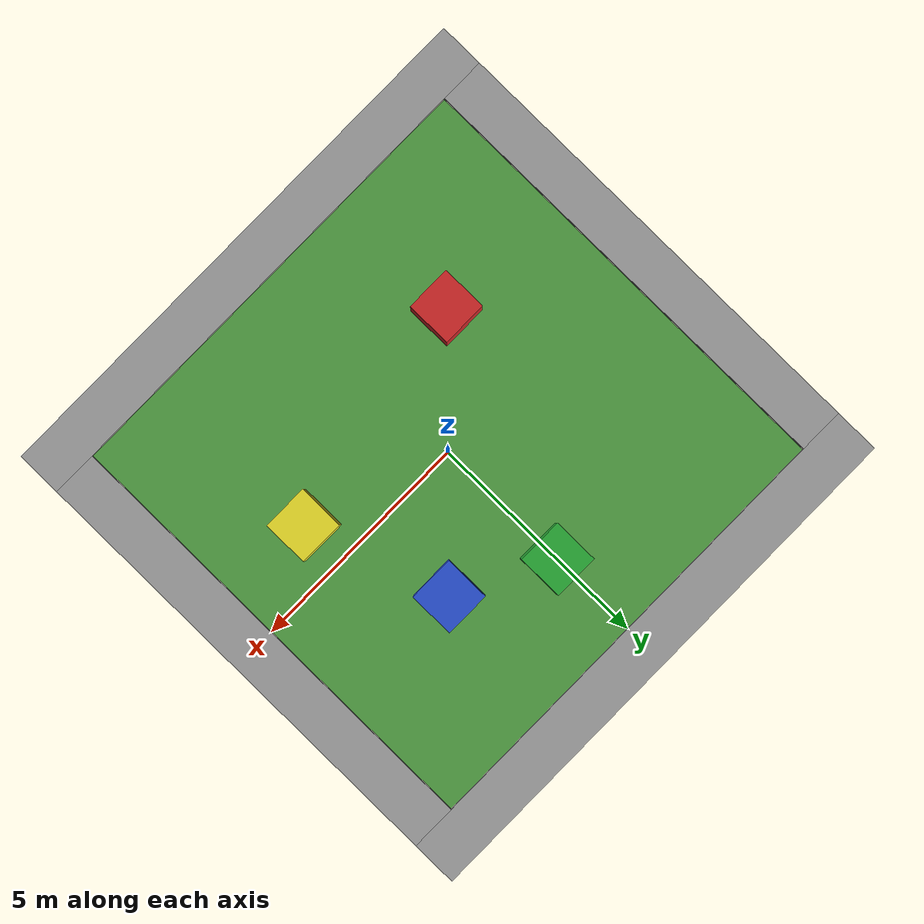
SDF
<?xml version="1.0" ?>
<sdf version="1.7">
  <world name="simple_world">
    <!-- Grass Ground Plane -->
    <model name="grass_ground">
      <static>true</static>
      <link name="link">
        <collision name="collision">
          <geometry>
            <plane>
              <normal>0 0 1</normal>
              <size>10 10</size>
            </plane>
          </geometry>
        </collision>
        <visual name="visual">
          <geometry>
            <plane>
              <normal>0 0 1</normal>
              <size>10 10</size>
            </plane>
          </geometry>
          <material>
            <script>
              <uri>file://media/materials/scripts/gazebo.material</uri>
              <name>Gazebo/Grass</name>
            </script>
          </material>
        </visual>
      </link>
    </model>

    <!-- Pavement Border (4 sides) -->
    <!-- Top Border -->
    <model name="pavement_top">
      <static>true</static>
      <pose>0 5.5 0.05 0 0 0</pose>
      <link name="link">
        <collision name="collision">
          <geometry>
            <box>
              <size>12 1 0.1</size>
            </box>
          </geometry>
        </collision>
        <visual name="visual">
          <geometry>
            <box>
              <size>12 1 0.1</size>
            </box>
          </geometry>
          <material>
            <script>
              <uri>file://media/materials/scripts/gazebo.material</uri>
              <name>Gazebo/Grey</name>
            </script>
          </material>
        </visual>
      </link>
    </model>

    <!-- Bottom Border -->
    <model name="pavement_bottom">
      <static>true</static>
      <pose>0 -5.5 0.05 0 0 0</pose>
      <link name="link">
        <collision name="collision">
          <geometry>
            <box>
              <size>12 1 0.1</size>
            </box>
          </geometry>
        </collision>
        <visual name="visual">
          <geometry>
            <box>
              <size>12 1 0.1</size>
            </box>
          </geometry>
          <material>
            <script>
              <uri>file://media/materials/scripts/gazebo.material</uri>
              <name>Gazebo/Grey</name>
            </script>
          </material>
        </visual>
      </link>
    </model>

    <!-- Left Border -->
    <model name="pavement_left">
      <static>true</static>
      <pose>-5.5 0 0.05 0 0 0</pose>
      <link name="link">
        <collision name="collision">
          <geometry>
            <box>
              <size>1 10 0.1</size>
            </box>
          </geometry>
        </collision>
        <visual name="visual">
          <geometry>
            <box>
              <size>1 10 0.1</size>
            </box>
          </geometry>
          <material>
            <script>
              <uri>file://media/materials/scripts/gazebo.material</uri>
              <name>Gazebo/Grey</name>
            </script>
          </material>
        </visual>
      </link>
    </model>

    <!-- Right Border -->
    <model name="pavement_right">
      <static>true</static>
      <pose>5.5 0 0.05 0 0 0</pose>
      <link name="link">
        <collision name="collision">
          <geometry>
            <box>
              <size>1 10 0.1</size>
            </box>
          </geometry>
        </collision>
        <visual name="visual">
          <geometry>
            <box>
              <size>1 10 0.1</size>
            </box>
          </geometry>
          <material>
            <script>
              <uri>file://media/materials/scripts/gazebo.material</uri>
              <name>Gazebo/Grey</name>
            </script>
          </material>
        </visual>
      </link>
    </model>

    <!-- Obstacle 1 -->
    <model name="obstacle1">
      <pose>2 2 0.5 0 0 0</pose>
      <link name="link">
        <collision name="collision">
          <geometry>
            <box>
              <size>1 1 1</size>
            </box>
          </geometry>
        </collision>
        <visual name="visual">
          <geometry>
            <box>
              <size>1 1 1</size>
            </box>
          </geometry>
          <material>
            <script>
              <uri>file://media/materials/scripts/gazebo.material</uri>
              <name>Gazebo/Blue</name>
            </script>
          </material>
        </visual>
      </link>
    </model>

    <!-- Obstacle 2 -->
    <model name="obstacle2">
      <pose>-2 -2 0.5 0 0 0</pose>
      <link name="link">
        <collision name="collision">
          <geometry>
            <box>
              <size>1 1 1</size>
            </box>
          </geometry>
        </collision>
        <visual name="visual">
          <geometry>
            <box>
              <size>1 1 1</size>
            </box>
          </geometry>
          <material>
            <script>
              <uri>file://media/materials/scripts/gazebo.material</uri>
              <name>Gazebo/Red</name>
            </script>
          </material>
        </visual>
      </link>
    </model>

    <!-- Obstacle 3 -->
    <model name="obstacle3">
      <pose>0 3 0.5 0 0 0</pose>
      <link name="link">
        <collision name="collision">
          <geometry>
            <box>
              <size>1 1 1</size>
            </box>
          </geometry>
        </collision>
        <visual name="visual">
          <geometry>
            <box>
              <size>1 1 1</size>
            </box>
          </geometry>
          <material>
            <script>
              <uri>file://media/materials/scripts/gazebo.material</uri>
              <name>Gazebo/Green</name>
            </script>
          </material>
        </visual>
      </link>
    </model>

    <!-- Obstacle 4 -->
    <model name="obstacle4">
      <pose>3 -1 0.5 0 0 0</pose>
      <link name="link">
        <collision name="collision">
          <geometry>
            <box>
              <size>1 1 1</size>
            </box>
          </geometry>
        </collision>
        <visual name="visual">
          <geometry>
            <box>
              <size>1 1 1</size>
            </box>
          </geometry>
          <material>
            <script>
              <uri>file://media/materials/scripts/gazebo.material</uri>
              <name>Gazebo/Yellow</name>
            </script>
          </material>
        </visual>
      </link>
    </model>

    <!-- Light Source -->
    <light type="directional" name="sun">
      <pose>0 0 10 0 0 0</pose>
      <diffuse>0.8 0.8 0.8 1</diffuse>
      <specular>0.2 0.2 0.2 1</specular>
      <direction>-0.5 0.1 -0.9</direction>
    </light>
  </world>
</sdf>
